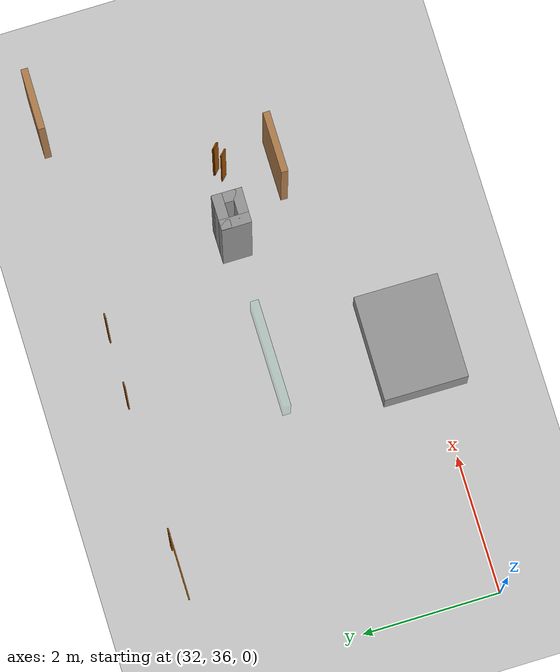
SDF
<sdf version="1.6">
 <world name="default">
  <model name="ground_plane">
   <static>1</static>
   <link name="link">
    <collision name="collision">
     <geometry><plane><normal>0 0 1</normal><size>100 100</size></plane></geometry>
     <surface><friction><ode><mu>100</mu><mu2>50</mu2></ode></friction></surface>
    </collision>
    <visual name="visual">
     <cast_shadows>0</cast_shadows>
     <geometry><plane><normal>0 0 1</normal><size>100 100</size></plane></geometry>
     <material>
      <script><uri>file://media/materials/scripts/gazebo.material</uri><name>Gazebo/Grey</name></script>
     </material>
    </visual>
   </link>
  </model>
  <model name="CVSSP">
   <pose>23.8714 24.094 0 0 -0 0</pose>
   <link name="Wall_62">
    <collision name="Wall_62_Collision">
     <geometry><box><size>0.5 0.15 2.5</size></box></geometry>
     <pose>0 0 1.25 0 -0 0</pose>
    </collision>
    <visual name="Wall_62_Visual">
     <pose>0 0 1.25 0 -0 0</pose>
     <geometry><box><size>0.5 0.15 2.5</size></box></geometry>
     <material>
      <script><uri>file://media/materials/scripts/gazebo.material</uri><name>Gazebo/Grey</name></script>
      <ambient>1 1 1 1</ambient>
     </material>
    </visual>
    <pose>13.9808 14.1734 0 0 -0 0</pose>
   </link>
   <link name="Wall_63">
    <collision name="Wall_63_Collision">
     <geometry><box><size>0.433407 0.15 2.5</size></box></geometry>
     <pose>0 0 1.25 0 -0 0</pose>
    </collision>
    <visual name="Wall_63_Visual">
     <pose>0 0 1.25 0 -0 0</pose>
     <geometry><box><size>0.433407 0.15 2.5</size></box></geometry>
     <material>
      <script><uri>file://media/materials/scripts/gazebo.material</uri><name>Gazebo/Grey</name></script>
      <ambient>1 1 1 1</ambient>
     </material>
    </visual>
    <pose>14.1548 14.0317 0 0 0 -1.57777</pose>
   </link>
   <link name="Wall_64">
    <collision name="Wall_64_Collision">
     <geometry><box><size>0.498059 0.15 2.5</size></box></geometry>
     <pose>0 0 1.25 0 -0 0</pose>
    </collision>
    <visual name="Wall_64_Visual">
     <pose>0 0 1.25 0 -0 0</pose>
     <geometry><box><size>0.498059 0.15 2.5</size></box></geometry>
     <material>
      <script><uri>file://media/materials/scripts/gazebo.material</uri><name>Gazebo/Grey</name></script>
      <ambient>1 1 1 1</ambient>
     </material>
    </visual>
    <pose>13.9798 13.8925 0 0 -0 3.12731</pose>
   </link>
   <link name="Wall_65">
    <collision name="Wall_65_Collision">
     <geometry><box><size>0.428419 0.15 2.5</size></box></geometry>
     <pose>0 0 1.25 0 -0 0</pose>
    </collision>
    <visual name="Wall_65_Visual">
     <pose>0 0 1.25 0 -0 0</pose>
     <geometry><box><size>0.428419 0.15 2.5</size></box></geometry>
     <material>
      <script><uri>file://media/materials/scripts/gazebo.material</uri><name>Gazebo/Grey</name></script>
      <ambient>1 1 1 1</ambient>
     </material>
    </visual>
    <pose>13.8008 14.0342 0 0 -0 1.5708</pose>
   </link>
   <static>1</static>
  </model>
  <model name="Basic_ply_door">
   <link name="link">
    <pose>1.20031 2.43241 0.995323 -0 -0 -0.009284</pose>
    <inertial>
     <mass>0.5167</mass>
     <inertia>
      <ixx>0.00086117</ixx>
      <ixy>0</ixy>
      <ixz>0</ixz>
      <iyy>0.00086117</iyy>
      <iyz>0</iyz>
      <izz>0.00086117</izz>
     </inertia>
    </inertial>
    <gravity>0</gravity>
    <visual name="visual">
     <geometry><box><size>0.88 0.1 1.96</size></box></geometry>
     <material>
      <script><uri>file://media/materials/scripts/gazebo.material</uri><name>Gazebo/Wood</name></script>
      <shader type="pixel"><normal_map>__default__</normal_map></shader>
      <ambient>1 1 1 1</ambient>
      <diffuse>1 1 1 1</diffuse>
      <specular>0.2 0.2 0.2 1</specular>
      <emissive>0 0 0 1</emissive>
     </material>
    </visual>
    <collision name="collision">
     <geometry><box><size>0.88 0.1 1.96</size></box></geometry>
     <surface>
      <friction>
       <ode><mu>1</mu><mu2>1</mu2><fdir1>0 0 0</fdir1><slip1>0</slip1><slip2>0</slip2></ode>
       <torsional>
        <coefficient>1</coefficient>
        <patch_radius>0</patch_radius>
        <surface_radius>0.01</surface_radius>
        <use_patch_radius>0</use_patch_radius>
        <ode><slip>0</slip></ode>
       </torsional>
      </friction>
      <bounce><restitution_coefficient>0</restitution_coefficient><threshold>1e+06</threshold></bounce>
      <contact>
       <collide_without_contact>0</collide_without_contact>
       <collide_without_contact_bitmask>1</collide_without_contact_bitmask>
       <collide_bitmask>1</collide_bitmask>
       <ode>
        <soft_cfm>0</soft_cfm>
        <soft_erp>0.2</soft_erp>
        <kp>100000</kp>
        <kd>100</kd>
        <max_vel>100</max_vel>
        <min_depth>0.001</min_depth>
       </ode>
       <bullet>
        <split_impulse>1</split_impulse>
        <split_impulse_penetration_threshold>-0.01</split_impulse_penetration_threshold>
        <soft_cfm>0</soft_cfm>
        <soft_erp>0.2</soft_erp>
        <kp>100000</kp>
        <kd>100</kd>
       </bullet>
      </contact>
     </surface>
    </collision>
   </link>
   <static>1</static>
   <pose>39.0212 37.8356 -0.001013 0 -0 0</pose>
  </model>
  <model name="basic_ply_door_corrected">
   <link name="link">
    <pose>-0 0 1.00385 0 -0 0</pose>
    <inertial>
     <mass>0.5167</mass>
     <inertia>
      <ixx>0.00086117</ixx>
      <ixy>0</ixy>
      <ixz>0</ixz>
      <iyy>0.00086117</iyy>
      <iyz>0</iyz>
      <izz>0.00086117</izz>
     </inertia>
    </inertial>
    <gravity>0</gravity>
    <visual name="visual">
     <geometry><box><size>0.88 0.1 1.96</size></box></geometry>
     <material>
      <script><uri>file://media/materials/scripts/gazebo.material</uri><name>Gazebo/Wood</name></script>
      <shader type="pixel"><normal_map>__default__</normal_map></shader>
      <ambient>1 1 1 1</ambient>
      <diffuse>1 1 1 1</diffuse>
      <specular>0.2 0.2 0.2 1</specular>
      <emissive>0 0 0 1</emissive>
     </material>
    </visual>
    <collision name="collision">
     <geometry><box><size>0.88 0.1 1.96</size></box></geometry>
     <surface>
      <friction>
       <ode><mu>1</mu><mu2>1</mu2><fdir1>0 0 0</fdir1><slip1>0</slip1><slip2>0</slip2></ode>
       <torsional>
        <coefficient>1</coefficient>
        <patch_radius>0</patch_radius>
        <surface_radius>0.01</surface_radius>
        <use_patch_radius>0</use_patch_radius>
        <ode><slip>0</slip></ode>
       </torsional>
      </friction>
      <bounce><restitution_coefficient>0</restitution_coefficient><threshold>1e+06</threshold></bounce>
      <contact>
       <collide_without_contact>0</collide_without_contact>
       <collide_without_contact_bitmask>1</collide_without_contact_bitmask>
       <collide_bitmask>1</collide_bitmask>
       <ode>
        <soft_cfm>0</soft_cfm>
        <soft_erp>0.2</soft_erp>
        <kp>100000</kp>
        <kd>100</kd>
        <max_vel>100</max_vel>
        <min_depth>0.001</min_depth>
       </ode>
       <bullet>
        <split_impulse>1</split_impulse>
        <split_impulse_penetration_threshold>-0.01</split_impulse_penetration_threshold>
        <soft_cfm>0</soft_cfm>
        <soft_erp>0.2</soft_erp>
        <kp>100000</kp>
        <kd>100</kd>
       </bullet>
      </contact>
     </surface>
    </collision>
   </link>
   <static>1</static>
   <pose>38.6707 37.2498 -0.001013 0 -0 0</pose>
  </model>
  <model name="window_rlab">
   <link name="link">
    <inertial>
     <mass>0.185318</mass>
     <inertia>
      <ixx>0.0157792</ixx>
      <ixy>0</ixy>
      <ixz>0</ixz>
      <iyy>0.0398142</iyy>
      <iyz>0</iyz>
      <izz>0.0247071</izz>
     </inertia>
    </inertial>
    <gravity>0</gravity>
    <visual name="visual">
     <geometry><box><size>1.54426 0.115953 0.786254</size></box></geometry>
     <material>
      <script><name>Gazebo/Grey</name><uri>file://media/materials/scripts/gazebo.material</uri></script>
      <shader type="pixel"><normal_map>__default__</normal_map></shader>
      <ambient>0.435 0.796 0.675 1</ambient>
      <diffuse>0.7 0.7 0.7 1</diffuse>
      <specular>0.01 0.01 0.01 1</specular>
      <emissive>0 0 0 1</emissive>
     </material>
     <transparency>0.8</transparency>
    </visual>
    <collision name="collision">
     <geometry><box><size>1.54426 0.115953 0.786254</size></box></geometry>
     <surface>
      <friction>
       <ode><mu>1</mu><mu2>1</mu2><fdir1>0 0 0</fdir1><slip1>0</slip1><slip2>0</slip2></ode>
       <torsional>
        <coefficient>1</coefficient>
        <patch_radius>0</patch_radius>
        <surface_radius>0</surface_radius>
        <use_patch_radius>1</use_patch_radius>
        <ode><slip>0</slip></ode>
       </torsional>
      </friction>
      <bounce><restitution_coefficient>0</restitution_coefficient><threshold>1e+06</threshold></bounce>
      <contact>
       <collide_without_contact>0</collide_without_contact>
       <collide_without_contact_bitmask>1</collide_without_contact_bitmask>
       <collide_bitmask>1</collide_bitmask>
       <ode>
        <soft_cfm>0</soft_cfm>
        <soft_erp>0.2</soft_erp>
        <kp>1e+13</kp>
        <kd>1</kd>
        <max_vel>0.01</max_vel>
        <min_depth>0</min_depth>
       </ode>
       <bullet>
        <split_impulse>1</split_impulse>
        <split_impulse_penetration_threshold>-0.01</split_impulse_penetration_threshold>
        <soft_cfm>0</soft_cfm>
        <soft_erp>0.2</soft_erp>
        <kp>1e+13</kp>
        <kd>1</kd>
       </bullet>
      </contact>
     </surface>
    </collision>
   </link>
   <static>1</static>
   <pose>35.9818 38.1379 0.88691 0 -0 0</pose>
  </model>
  <model name="oak_frame">
   <link name="link">
    <inertial>
     <mass>1</mass>
     <inertia>
      <ixx>0.166667</ixx>
      <ixy>0</ixy>
      <ixz>0</ixz>
      <iyy>0.166667</iyy>
      <iyz>0</iyz>
      <izz>0.166667</izz>
     </inertia>
    </inertial>
    <visual name="visual">
     <geometry><box><size>0.018685 0.118108 1.77296</size></box></geometry>
     <material>
      <script><name>Gazebo/Grey</name><uri>file://media/materials/scripts/gazebo.material</uri></script>
      <shader type="pixel"><normal_map>__default__</normal_map></shader>
      <diffuse>0.58 0.29 0 0</diffuse>
      <ambient>0.58 0.29 0 1</ambient>
      <specular>0.01 0.01 0.01 1</specular>
      <emissive>0 0 0 1</emissive>
     </material>
    </visual>
    <collision name="collision">
     <geometry><box><size>0.018685 0.118108 1.77296</size></box></geometry>
     <surface>
      <friction>
       <ode><mu>1</mu><mu2>1</mu2><fdir1>0 0 0</fdir1><slip1>0</slip1><slip2>0</slip2></ode>
       <torsional>
        <coefficient>1</coefficient>
        <patch_radius>0</patch_radius>
        <surface_radius>0</surface_radius>
        <use_patch_radius>1</use_patch_radius>
        <ode><slip>0</slip></ode>
       </torsional>
      </friction>
      <bounce><restitution_coefficient>0</restitution_coefficient><threshold>1e+06</threshold></bounce>
      <contact>
       <collide_without_contact>0</collide_without_contact>
       <collide_without_contact_bitmask>1</collide_without_contact_bitmask>
       <collide_bitmask>1</collide_bitmask>
       <ode>
        <soft_cfm>0</soft_cfm>
        <soft_erp>0.2</soft_erp>
        <kp>1e+13</kp>
        <kd>1</kd>
        <max_vel>0.01</max_vel>
        <min_depth>0</min_depth>
       </ode>
       <bullet>
        <split_impulse>1</split_impulse>
        <split_impulse_penetration_threshold>-0.01</split_impulse_penetration_threshold>
        <soft_cfm>0</soft_cfm>
        <soft_erp>0.2</soft_erp>
        <kp>1e+13</kp>
        <kd>1</kd>
       </bullet>
      </contact>
     </surface>
    </collision>
   </link>
   <static>1</static>
   <pose>38.7758 37.9749 0.901519 0 0 -2.35193</pose>
  </model>
  <model name="oak_frame_clone">
   <link name="link">
    <inertial>
     <mass>1</mass>
     <inertia>
      <ixx>0.166667</ixx>
      <ixy>0</ixy>
      <ixz>0</ixz>
      <iyy>0.166667</iyy>
      <iyz>0</iyz>
      <izz>0.166667</izz>
     </inertia>
    </inertial>
    <visual name="visual">
     <geometry><box><size>0.018685 0.118108 1.77296</size></box></geometry>
     <material>
      <script><name>Gazebo/Grey</name><uri>file://media/materials/scripts/gazebo.material</uri></script>
      <shader type="pixel"><normal_map>__default__</normal_map></shader>
      <diffuse>0.58 0.29 0 0</diffuse>
      <ambient>0.58 0.29 0 1</ambient>
      <specular>0.01 0.01 0.01 1</specular>
      <emissive>0 0 0 1</emissive>
     </material>
    </visual>
    <collision name="collision">
     <geometry><box><size>0.018685 0.118108 1.77296</size></box></geometry>
     <surface>
      <friction>
       <ode><mu>1</mu><mu2>1</mu2><fdir1>0 0 0</fdir1><slip1>0</slip1><slip2>0</slip2></ode>
       <torsional>
        <coefficient>1</coefficient>
        <patch_radius>0</patch_radius>
        <surface_radius>0</surface_radius>
        <use_patch_radius>1</use_patch_radius>
        <ode><slip>0</slip></ode>
       </torsional>
      </friction>
      <bounce><restitution_coefficient>0</restitution_coefficient><threshold>1e+06</threshold></bounce>
      <contact>
       <collide_without_contact>0</collide_without_contact>
       <collide_without_contact_bitmask>1</collide_without_contact_bitmask>
       <collide_bitmask>1</collide_bitmask>
       <ode>
        <soft_cfm>0</soft_cfm>
        <soft_erp>0.2</soft_erp>
        <kp>1e+13</kp>
        <kd>1</kd>
        <max_vel>0.01</max_vel>
        <min_depth>0</min_depth>
       </ode>
       <bullet>
        <split_impulse>1</split_impulse>
        <split_impulse_penetration_threshold>-0.01</split_impulse_penetration_threshold>
        <soft_cfm>0</soft_cfm>
        <soft_erp>0.2</soft_erp>
        <kp>1e+13</kp>
        <kd>1</kd>
       </bullet>
      </contact>
     </surface>
    </collision>
   </link>
   <static>1</static>
   <pose>38.8933 38.0463 0.901519 0 0 -2.35193</pose>
  </model>
  <model name="oak_frame_clone_0">
   <link name="link">
    <inertial>
     <mass>1</mass>
     <inertia>
      <ixx>0.166667</ixx>
      <ixy>0</ixy>
      <ixz>0</ixz>
      <iyy>0.166667</iyy>
      <iyz>0</iyz>
      <izz>0.166667</izz>
     </inertia>
    </inertial>
    <visual name="visual">
     <geometry><box><size>0.018685 0.118108 1.77296</size></box></geometry>
     <material>
      <script><name>Gazebo/Grey</name><uri>file://media/materials/scripts/gazebo.material</uri></script>
      <shader type="pixel"><normal_map>__default__</normal_map></shader>
      <diffuse>0.58 0.29 0 0</diffuse>
      <ambient>0.58 0.29 0 1</ambient>
      <specular>0.01 0.01 0.01 1</specular>
      <emissive>0 0 0 1</emissive>
     </material>
    </visual>
    <collision name="collision">
     <geometry><box><size>0.018685 0.118108 1.77296</size></box></geometry>
     <surface>
      <friction>
       <ode><mu>1</mu><mu2>1</mu2><fdir1>0 0 0</fdir1><slip1>0</slip1><slip2>0</slip2></ode>
       <torsional>
        <coefficient>1</coefficient>
        <patch_radius>0</patch_radius>
        <surface_radius>0</surface_radius>
        <use_patch_radius>1</use_patch_radius>
        <ode><slip>0</slip></ode>
       </torsional>
      </friction>
      <bounce><restitution_coefficient>0</restitution_coefficient><threshold>1e+06</threshold></bounce>
      <contact>
       <collide_without_contact>0</collide_without_contact>
       <collide_without_contact_bitmask>1</collide_without_contact_bitmask>
       <collide_bitmask>1</collide_bitmask>
       <ode>
        <soft_cfm>0</soft_cfm>
        <soft_erp>0.2</soft_erp>
        <kp>1e+13</kp>
        <kd>1</kd>
        <max_vel>0.01</max_vel>
        <min_depth>0</min_depth>
       </ode>
       <bullet>
        <split_impulse>1</split_impulse>
        <split_impulse_penetration_threshold>-0.01</split_impulse_penetration_threshold>
        <soft_cfm>0</soft_cfm>
        <soft_erp>0.2</soft_erp>
        <kp>1e+13</kp>
        <kd>1</kd>
       </bullet>
      </contact>
     </surface>
    </collision>
   </link>
   <static>1</static>
   <pose>38.8933 38.0589 0.901519 0 0 -2.35193</pose>
  </model>
  <model name="black_door_clone_clone_0">
   <link name="link">
    <inertial>
     <mass>1</mass>
     <inertia>
      <ixx>0.166667</ixx>
      <ixy>0</ixy>
      <ixz>0</ixz>
      <iyy>0.166667</iyy>
      <iyz>0</iyz>
      <izz>0.166667</izz>
     </inertia>
    </inertial>
    <gravity>0</gravity>
    <visual name="visual">
     <geometry><box><size>0.648211 1.21825 1.51833</size></box></geometry>
     <material>
      <script><name>Gazebo/Grey</name><uri>file://media/materials/scripts/gazebo.material</uri></script>
      <shader type="pixel"><normal_map>__default__</normal_map></shader>
      <ambient>0.01 0.001 0.001 1</ambient>
      <diffuse>0.7 0.7 0.7 1</diffuse>
      <specular>0.01 0.01 0.01 1</specular>
      <emissive>0 0 0 1</emissive>
     </material>
    </visual>
    <collision name="collision">
     <geometry><box><size>0.648211 1.21825 1.51833</size></box></geometry>
     <surface>
      <friction>
       <ode><mu>1</mu><mu2>1</mu2><fdir1>0 0 0</fdir1><slip1>0</slip1><slip2>0</slip2></ode>
       <torsional>
        <coefficient>1</coefficient>
        <patch_radius>0</patch_radius>
        <surface_radius>0</surface_radius>
        <use_patch_radius>1</use_patch_radius>
        <ode><slip>0</slip></ode>
       </torsional>
      </friction>
      <bounce><restitution_coefficient>0</restitution_coefficient><threshold>1e+06</threshold></bounce>
      <contact>
       <collide_without_contact>0</collide_without_contact>
       <collide_without_contact_bitmask>1</collide_without_contact_bitmask>
       <collide_bitmask>1</collide_bitmask>
       <ode>
        <soft_cfm>0</soft_cfm>
        <soft_erp>0.2</soft_erp>
        <kp>1e+13</kp>
        <kd>1</kd>
        <max_vel>0.01</max_vel>
        <min_depth>0</min_depth>
       </ode>
       <bullet>
        <split_impulse>1</split_impulse>
        <split_impulse_penetration_threshold>-0.01</split_impulse_penetration_threshold>
        <soft_cfm>0</soft_cfm>
        <soft_erp>0.2</soft_erp>
        <kp>1e+13</kp>
        <kd>1</kd>
       </bullet>
      </contact>
     </surface>
    </collision>
   </link>
   <static>1</static>
   <pose>35.721 36.1676 0.396876 -1.69381 -1.56274 1.6836</pose>
  </model>
  <model name="oak_frame_clone_3_clone_clone_3">
   <link name="link">
    <inertial>
     <mass>1</mass>
     <inertia>
      <ixx>0.166667</ixx>
      <ixy>0</ixy>
      <ixz>0</ixz>
      <iyy>0.166667</iyy>
      <iyz>0</iyz>
      <izz>0.166667</izz>
     </inertia>
    </inertial>
    <visual name="visual">
     <geometry><box><size>0.018685 0.07556 2.09672</size></box></geometry>
     <material>
      <script><name>Gazebo/Grey</name><uri>file://media/materials/scripts/gazebo.material</uri></script>
      <shader type="pixel"><normal_map>__default__</normal_map></shader>
      <diffuse>0.58 0.29 0 0</diffuse>
      <ambient>0.58 0.29 0 1</ambient>
      <specular>0.01 0.01 0.01 1</specular>
      <emissive>0 0 0 1</emissive>
     </material>
    </visual>
    <collision name="collision">
     <geometry><box><size>0.018685 0.07556 2.09672</size></box></geometry>
     <surface>
      <friction>
       <ode><mu>1</mu><mu2>1</mu2><fdir1>0 0 0</fdir1><slip1>0</slip1><slip2>0</slip2></ode>
       <torsional>
        <coefficient>1</coefficient>
        <patch_radius>0</patch_radius>
        <surface_radius>0</surface_radius>
        <use_patch_radius>1</use_patch_radius>
        <ode><slip>0</slip></ode>
       </torsional>
      </friction>
      <bounce><restitution_coefficient>0</restitution_coefficient><threshold>1e+06</threshold></bounce>
      <contact>
       <collide_without_contact>0</collide_without_contact>
       <collide_without_contact_bitmask>1</collide_without_contact_bitmask>
       <collide_bitmask>1</collide_bitmask>
       <ode>
        <soft_cfm>0</soft_cfm>
        <soft_erp>0.2</soft_erp>
        <kp>1e+13</kp>
        <kd>1</kd>
        <max_vel>0.01</max_vel>
        <min_depth>0</min_depth>
       </ode>
       <bullet>
        <split_impulse>1</split_impulse>
        <split_impulse_penetration_threshold>-0.01</split_impulse_penetration_threshold>
        <soft_cfm>0</soft_cfm>
        <soft_erp>0.2</soft_erp>
        <kp>1e+13</kp>
        <kd>1</kd>
       </bullet>
      </contact>
     </surface>
    </collision>
   </link>
   <static>1</static>
   <pose>37.0109 40.1885 1.03498 0 0 -1.54792</pose>
  </model>
  <model name="oak_frame_clone_3_clone_clone_4">
   <link name="link">
    <inertial>
     <mass>1</mass>
     <inertia>
      <ixx>0.166667</ixx>
      <ixy>0</ixy>
      <ixz>0</ixz>
      <iyy>0.166667</iyy>
      <iyz>0</iyz>
      <izz>0.166667</izz>
     </inertia>
    </inertial>
    <visual name="visual">
     <geometry><box><size>0.018685 0.07556 2.09672</size></box></geometry>
     <material>
      <script><name>Gazebo/Grey</name><uri>file://media/materials/scripts/gazebo.material</uri></script>
      <shader type="pixel"><normal_map>__default__</normal_map></shader>
      <diffuse>0.58 0.29 0 0</diffuse>
      <ambient>0.58 0.29 0 1</ambient>
      <specular>0.01 0.01 0.01 1</specular>
      <emissive>0 0 0 1</emissive>
     </material>
    </visual>
    <collision name="collision">
     <geometry><box><size>0.018685 0.07556 2.09672</size></box></geometry>
     <surface>
      <friction>
       <ode><mu>1</mu><mu2>1</mu2><fdir1>0 0 0</fdir1><slip1>0</slip1><slip2>0</slip2></ode>
       <torsional>
        <coefficient>1</coefficient>
        <patch_radius>0</patch_radius>
        <surface_radius>0</surface_radius>
        <use_patch_radius>1</use_patch_radius>
        <ode><slip>0</slip></ode>
       </torsional>
      </friction>
      <bounce><restitution_coefficient>0</restitution_coefficient><threshold>1e+06</threshold></bounce>
      <contact>
       <collide_without_contact>0</collide_without_contact>
       <collide_without_contact_bitmask>1</collide_without_contact_bitmask>
       <collide_bitmask>1</collide_bitmask>
       <ode>
        <soft_cfm>0</soft_cfm>
        <soft_erp>0.2</soft_erp>
        <kp>1e+13</kp>
        <kd>1</kd>
        <max_vel>0.01</max_vel>
        <min_depth>0</min_depth>
       </ode>
       <bullet>
        <split_impulse>1</split_impulse>
        <split_impulse_penetration_threshold>-0.01</split_impulse_penetration_threshold>
        <soft_cfm>0</soft_cfm>
        <soft_erp>0.2</soft_erp>
        <kp>1e+13</kp>
        <kd>1</kd>
       </bullet>
      </contact>
     </surface>
    </collision>
   </link>
   <static>1</static>
   <pose>36.0295 40.2091 1.03498 0 0 -1.54792</pose>
  </model>
  <model name="oak_frame_clone_3_clone_clone_4_clone_0">
   <link name="link">
    <inertial>
     <mass>1</mass>
     <inertia>
      <ixx>0.166667</ixx>
      <ixy>0</ixy>
      <ixz>0</ixz>
      <iyy>0.166667</iyy>
      <iyz>0</iyz>
      <izz>0.166667</izz>
     </inertia>
    </inertial>
    <visual name="visual">
     <geometry><box><size>0.018685 0.07556 2.09672</size></box></geometry>
     <material>
      <script><name>Gazebo/Grey</name><uri>file://media/materials/scripts/gazebo.material</uri></script>
      <shader type="pixel"><normal_map>__default__</normal_map></shader>
      <diffuse>0.58 0.29 0 0</diffuse>
      <ambient>0.58 0.29 0 1</ambient>
      <specular>0.01 0.01 0.01 1</specular>
      <emissive>0 0 0 1</emissive>
     </material>
    </visual>
    <collision name="collision">
     <geometry><box><size>0.018685 0.07556 2.09672</size></box></geometry>
     <surface>
      <friction>
       <ode><mu>1</mu><mu2>1</mu2><fdir1>0 0 0</fdir1><slip1>0</slip1><slip2>0</slip2></ode>
       <torsional>
        <coefficient>1</coefficient>
        <patch_radius>0</patch_radius>
        <surface_radius>0</surface_radius>
        <use_patch_radius>1</use_patch_radius>
        <ode><slip>0</slip></ode>
       </torsional>
      </friction>
      <bounce><restitution_coefficient>0</restitution_coefficient><threshold>1e+06</threshold></bounce>
      <contact>
       <collide_without_contact>0</collide_without_contact>
       <collide_without_contact_bitmask>1</collide_without_contact_bitmask>
       <collide_bitmask>1</collide_bitmask>
       <ode>
        <soft_cfm>0</soft_cfm>
        <soft_erp>0.2</soft_erp>
        <kp>1e+13</kp>
        <kd>1</kd>
        <max_vel>0.01</max_vel>
        <min_depth>0</min_depth>
       </ode>
       <bullet>
        <split_impulse>1</split_impulse>
        <split_impulse_penetration_threshold>-0.01</split_impulse_penetration_threshold>
        <soft_cfm>0</soft_cfm>
        <soft_erp>0.2</soft_erp>
        <kp>1e+13</kp>
        <kd>1</kd>
       </bullet>
      </contact>
     </surface>
    </collision>
   </link>
   <static>1</static>
   <pose>33.936 40.2054 1.03498 0 0 -1.54792</pose>
  </model>
  <model name="oak_frame_clone_3_clone_0_clone_3">
   <link name="link">
    <inertial>
     <mass>1</mass>
     <inertia>
      <ixx>0.166667</ixx>
      <ixy>0</ixy>
      <ixz>0</ixz>
      <iyy>0.166667</iyy>
      <iyz>0</iyz>
      <izz>0.166667</izz>
     </inertia>
    </inertial>
    <visual name="visual">
     <geometry><box><size>0.018685 0.07556 1.00652</size></box></geometry>
     <material>
      <script><name>Gazebo/Grey</name><uri>file://media/materials/scripts/gazebo.material</uri></script>
      <shader type="pixel"><normal_map>__default__</normal_map></shader>
      <diffuse>0.58 0.29 0 0</diffuse>
      <ambient>0.58 0.29 0 1</ambient>
      <specular>0.01 0.01 0.01 1</specular>
      <emissive>0 0 0 1</emissive>
     </material>
    </visual>
    <collision name="collision">
     <geometry><box><size>0.018685 0.07556 1.00652</size></box></geometry>
     <surface>
      <friction>
       <ode><mu>1</mu><mu2>1</mu2><fdir1>0 0 0</fdir1><slip1>0</slip1><slip2>0</slip2></ode>
       <torsional>
        <coefficient>1</coefficient>
        <patch_radius>0</patch_radius>
        <surface_radius>0</surface_radius>
        <use_patch_radius>1</use_patch_radius>
        <ode><slip>0</slip></ode>
       </torsional>
      </friction>
      <bounce><restitution_coefficient>0</restitution_coefficient><threshold>1e+06</threshold></bounce>
      <contact>
       <collide_without_contact>0</collide_without_contact>
       <collide_without_contact_bitmask>1</collide_without_contact_bitmask>
       <collide_bitmask>1</collide_bitmask>
       <ode>
        <soft_cfm>0</soft_cfm>
        <soft_erp>0.2</soft_erp>
        <kp>1e+13</kp>
        <kd>1</kd>
        <max_vel>0.01</max_vel>
        <min_depth>0</min_depth>
       </ode>
       <bullet>
        <split_impulse>1</split_impulse>
        <split_impulse_penetration_threshold>-0.01</split_impulse_penetration_threshold>
        <soft_cfm>0</soft_cfm>
        <soft_erp>0.2</soft_erp>
        <kp>1e+13</kp>
        <kd>1</kd>
       </bullet>
      </contact>
     </surface>
    </collision>
   </link>
   <static>1</static>
   <pose>33.4644 40.2071 2.04296 1.56806 -0.000643 -1.57018</pose>
  </model>
 </world>
</sdf>
